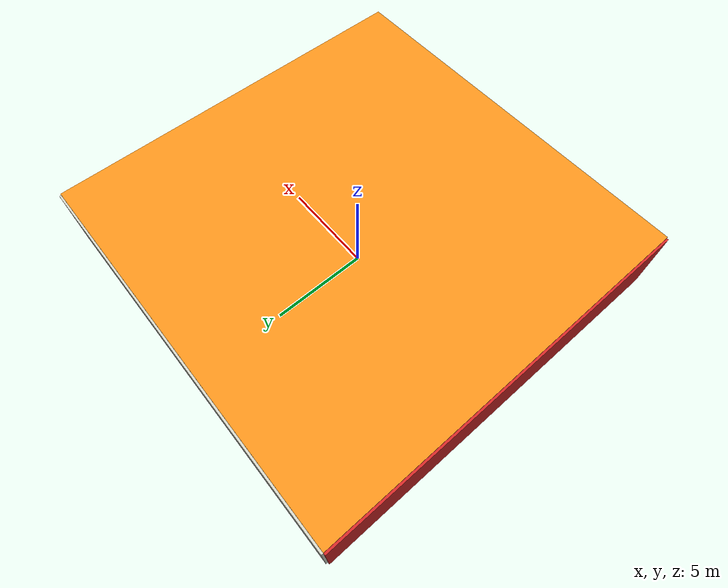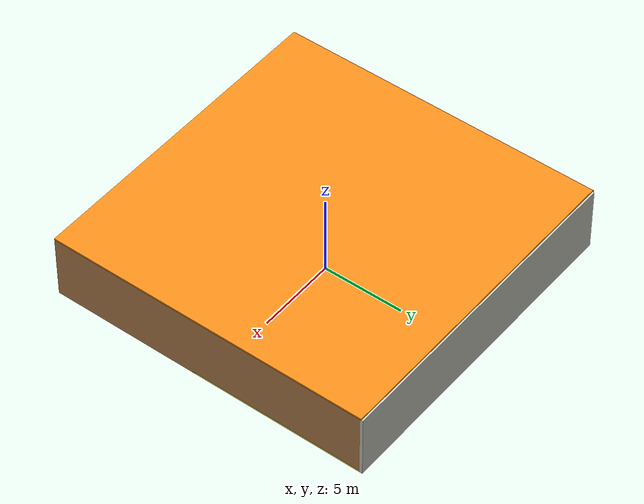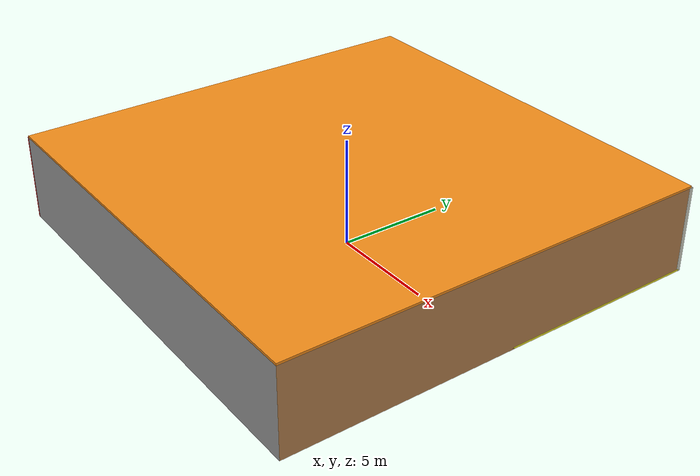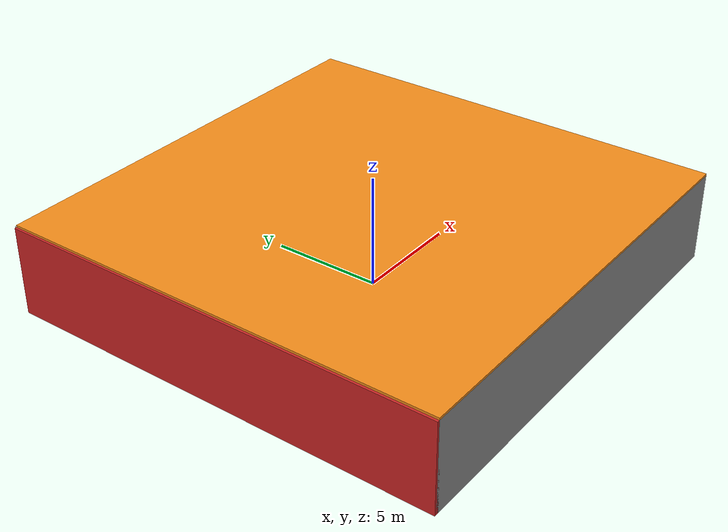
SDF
<sdf version="1.4">
 <world name="default">
  <physics type="ode">
   <max_step_size>0.001</max_step_size>
   <real_time_factor>1</real_time_factor>
   <real_time_update_rate>1000</real_time_update_rate>
   <gravity>0 0 -9.8</gravity>
  </physics>
  <scene><ambient>0.4 0.4 0.4 1</ambient><background>0.7 0.7 0.7 1</background><shadows>1</shadows></scene>
  <model name="Surrounding">
   <static>1</static>
   <link name="Ceiling">
    <collision name="Ceiling_Collision"><geometry><box><size>20 20 0.1</size></box></geometry></collision>
    <visual name="Ceiling_Visual">
     <geometry><box><size>20 20 0.1</size></box></geometry>
     <material>
      <script><uri>file://media/materials/scripts/gazebo.material</uri><name>Gazebo/Orange</name></script>
     </material>
    </visual>
    <pose>0 0 4.05 0 0 0</pose>
   </link>
   <link name="Wall_South">
    <collision name="Wall_South_Collision">
     <geometry><box><size>20 0 4</size></box></geometry>
     <pose>0 0 2 0 -0 0</pose>
    </collision>
    <visual name="Wall_South_Visual">
     <pose>0 0 2 0 -0 0</pose>
     <geometry><box><size>20 0 4</size></box></geometry>
     <material>
      <script><uri>file://media/materials/scripts/gazebo.material</uri><name>Gazebo/GreyGradientSky</name></script>
     </material>
    </visual>
    <velocity_decay><linear>0</linear><angular>0</angular></velocity_decay>
    <pose>0 -10 0 0 -0 0</pose>
   </link>
   <link name="Wall_East">
    <collision name="Wall_21_Collision">
     <geometry><box><size>20 0 4</size></box></geometry>
     <pose>0 0 2 0 -0 0</pose>
    </collision>
    <visual name="Wall_21_Visual">
     <pose>0 0 2 0 -0 0</pose>
     <geometry><box><size>20 0 4</size></box></geometry>
     <material>
      <script><uri>file://media/materials/scripts/gazebo.material</uri><name>Gazebo/Wood</name></script>
     </material>
    </visual>
    <velocity_decay><linear>0</linear><angular>0</angular></velocity_decay>
    <pose>10 0 0 0 -0 1.5708</pose>
   </link>
   <link name="Wall_North">
    <collision name="Wall_22_Collision">
     <geometry><box><size>20 0.2 4</size></box></geometry>
     <pose>0 0 2 0 -0 0</pose>
    </collision>
    <visual name="Wall_22_Visual">
     <pose>0 0 2 0 -0 0</pose>
     <geometry><box><size>20 0.2 4</size></box></geometry>
     <material>
      <script><uri>file://media/materials/scripts/gazebo.material</uri><name>Gazebo/PaintedWall</name></script>
     </material>
    </visual>
    <velocity_decay><linear>0</linear><angular>0</angular></velocity_decay>
    <pose>0 10 0 0 -0 0</pose>
   </link>
   <link name="Wall_West">
    <collision name="Wall_23_Collision">
     <geometry><box><size>20 0.2 4</size></box></geometry>
     <pose>0 0 2 0 -0 0</pose>
    </collision>
    <visual name="Wall_23_Visual">
     <pose>0 0 2 0 -0 0</pose>
     <geometry><box><size>20 0.2 4</size></box></geometry>
     <material>
      <script><uri>file://media/materials/scripts/gazebo.material</uri><name>Gazebo/RedBright</name></script>
     </material>
    </visual>
    <velocity_decay><linear>0</linear><angular>0</angular></velocity_decay>
    <pose>-10 0 0 0 0 -1.5708</pose>
   </link>
   <link name="Ground_link">
    <collision name="collision">
     <pose>0 0 .05 0 -0 0</pose>
     <geometry><box><size>20 20 0.1</size></box></geometry>
    </collision>
    <visual name="visual">
     <pose>0 0 .05 0 -0 0</pose>
     <geometry><box><size>20 20 0.1</size></box></geometry>
     <material>
      <script><uri>file://media/materials/scripts/gazebo.material</uri><name>Gazebo/YellowGlow</name></script>
     </material>
    </visual>
   </link>
   <static>1</static>
  </model>
  <spherical_coordinates>
   <surface_model>EARTH_WGS84</surface_model>
   <latitude_deg>0</latitude_deg>
   <longitude_deg>0</longitude_deg>
   <elevation>0</elevation>
   <heading_deg>0</heading_deg>
  </spherical_coordinates>
  <light name="lightball_0" type="diffuse">
   <diffuse>0.8 0.8 0.8 1</diffuse>
   <specular>0.2 0.2 0.2 1</specular>
   <attenuation>
    <range>100</range>
    <constant>0.7</constant>
    <linear>0.01</linear>
    <quadratic>0.001</quadratic>
   </attenuation>
   <direction>-0.5 0.1 -0.9</direction>
   <pose>-5.24900249116 -9.30436872461 2.44042946009 0 0 0</pose>
  </light>
  <light name="lightball_1" type="diffuse">
   <diffuse>0.8 0.8 0.8 1</diffuse>
   <specular>0.2 0.2 0.2 1</specular>
   <attenuation>
    <range>100</range>
    <constant>0.7</constant>
    <linear>0.01</linear>
    <quadratic>0.001</quadratic>
   </attenuation>
   <direction>-0.5 0.1 -0.9</direction>
   <pose>5.2860037039 5.31197141178 1.98470974956 0 0 0</pose>
  </light>
  <light name="lightball_2" type="diffuse">
   <diffuse>0.8 0.8 0.8 1</diffuse>
   <specular>0.2 0.2 0.2 1</specular>
   <attenuation>
    <range>100</range>
    <constant>0.7</constant>
    <linear>0.01</linear>
    <quadratic>0.001</quadratic>
   </attenuation>
   <direction>-0.5 0.1 -0.9</direction>
   <pose>5.54666217268 -0.480942935769 2.73995128243 0 0 0</pose>
  </light>
  <light name="lightball_3" type="diffuse">
   <diffuse>0.8 0.8 0.8 1</diffuse>
   <specular>0.2 0.2 0.2 1</specular>
   <attenuation>
    <range>100</range>
    <constant>0.7</constant>
    <linear>0.01</linear>
    <quadratic>0.001</quadratic>
   </attenuation>
   <direction>-0.5 0.1 -0.9</direction>
   <pose>-5.86711210484 4.24251803997 2.40311293666 0 0 0</pose>
  </light>
  <light name="lightball_4" type="diffuse">
   <diffuse>0.8 0.8 0.8 1</diffuse>
   <specular>0.2 0.2 0.2 1</specular>
   <attenuation>
    <range>100</range>
    <constant>0.7</constant>
    <linear>0.01</linear>
    <quadratic>0.001</quadratic>
   </attenuation>
   <direction>-0.5 0.1 -0.9</direction>
   <pose>-5.95162627022 5.75749834237 1.96406553694 0 0 0</pose>
  </light>
  <light name="lightball_5" type="diffuse">
   <diffuse>0.8 0.8 0.8 1</diffuse>
   <specular>0.2 0.2 0.2 1</specular>
   <attenuation>
    <range>100</range>
    <constant>0.7</constant>
    <linear>0.01</linear>
    <quadratic>0.001</quadratic>
   </attenuation>
   <direction>-0.5 0.1 -0.9</direction>
   <pose>0.705053763559 -9.30235126014 1.01488548659 0 0 0</pose>
  </light>
  <light name="lightball_6" type="diffuse">
   <diffuse>0.8 0.8 0.8 1</diffuse>
   <specular>0.2 0.2 0.2 1</specular>
   <attenuation>
    <range>100</range>
    <constant>0.7</constant>
    <linear>0.01</linear>
    <quadratic>0.001</quadratic>
   </attenuation>
   <direction>-0.5 0.1 -0.9</direction>
   <pose>7.85211046132 -0.0272291227253 1.26016102722 0 0 0</pose>
  </light>
  <light name="lightball_7" type="diffuse">
   <diffuse>0.8 0.8 0.8 1</diffuse>
   <specular>0.2 0.2 0.2 1</specular>
   <attenuation>
    <range>100</range>
    <constant>0.7</constant>
    <linear>0.01</linear>
    <quadratic>0.001</quadratic>
   </attenuation>
   <direction>-0.5 0.1 -0.9</direction>
   <pose>5.31922442972 -3.4477417113 3.61892712843 0 0 0</pose>
  </light>
  <light name="lightball_8" type="diffuse">
   <diffuse>0.8 0.8 0.8 1</diffuse>
   <specular>0.2 0.2 0.2 1</specular>
   <attenuation>
    <range>100</range>
    <constant>0.7</constant>
    <linear>0.01</linear>
    <quadratic>0.001</quadratic>
   </attenuation>
   <direction>-0.5 0.1 -0.9</direction>
   <pose>-1.89885600573 -0.93381180796 2.83757889734 0 0 0</pose>
  </light>
  <light name="lightball_9" type="diffuse">
   <diffuse>0.8 0.8 0.8 1</diffuse>
   <specular>0.2 0.2 0.2 1</specular>
   <attenuation>
    <range>100</range>
    <constant>0.7</constant>
    <linear>0.01</linear>
    <quadratic>0.001</quadratic>
   </attenuation>
   <direction>-0.5 0.1 -0.9</direction>
   <pose>9.48002739383 3.47184062983 2.83332910509 0 0 0</pose>
  </light>
  <light name="lightball_10" type="diffuse">
   <diffuse>0.8 0.8 0.8 1</diffuse>
   <specular>0.2 0.2 0.2 1</specular>
   <attenuation>
    <range>100</range>
    <constant>0.7</constant>
    <linear>0.01</linear>
    <quadratic>0.001</quadratic>
   </attenuation>
   <direction>-0.5 0.1 -0.9</direction>
   <pose>0.34785837132 -0.965261092863 3.87444258666 0 0 0</pose>
  </light>
  <light name="lightball_11" type="diffuse">
   <diffuse>0.8 0.8 0.8 1</diffuse>
   <specular>0.2 0.2 0.2 1</specular>
   <attenuation>
    <range>100</range>
    <constant>0.7</constant>
    <linear>0.01</linear>
    <quadratic>0.001</quadratic>
   </attenuation>
   <direction>-0.5 0.1 -0.9</direction>
   <pose>-7.2665277883 -1.77718963353 3.8146511904 0 0 0</pose>
  </light>
  <light name="lightball_12" type="diffuse">
   <diffuse>0.8 0.8 0.8 1</diffuse>
   <specular>0.2 0.2 0.2 1</specular>
   <attenuation>
    <range>100</range>
    <constant>0.7</constant>
    <linear>0.01</linear>
    <quadratic>0.001</quadratic>
   </attenuation>
   <direction>-0.5 0.1 -0.9</direction>
   <pose>-4.34687566456 8.16969093525 1.24600851356 0 0 0</pose>
  </light>
  <light name="lightball_13" type="diffuse">
   <diffuse>0.8 0.8 0.8 1</diffuse>
   <specular>0.2 0.2 0.2 1</specular>
   <attenuation>
    <range>100</range>
    <constant>0.7</constant>
    <linear>0.01</linear>
    <quadratic>0.001</quadratic>
   </attenuation>
   <direction>-0.5 0.1 -0.9</direction>
   <pose>3.10372571746 9.41031417677 1.21682605981 0 0 0</pose>
  </light>
  <include>
   <uri>model://robocup_3Dsim_goal</uri>
   <pose>-1.57132191455 -7.86526923595 0 0 0 0.308498312343</pose>
  </include>
  <include>
   <uri>model://robocup_3Dsim_goal</uri>
   <pose>5.20586197391 -3.91773122626 0 0 0 2.98127666427</pose>
  </include>
  <include><uri>model://table</uri><pose>4.00967219531 4.29762500032 0 0 0 0.988279924382</pose></include>
  <include><uri>model://table</uri><pose>7.38129533159 -7.27512170889 0 0 0 0.374959480771</pose></include>
  <include><uri>model://table</uri><pose>6.91457312889 -1.23461410834 0 0 0 2.975515972</pose></include>
  <include>
   <uri>model://textured_shapes</uri>
   <pose>7.12819178812 1.64941246779 0 0 0 2.49500493274</pose>
  </include>
 </world>
</sdf>

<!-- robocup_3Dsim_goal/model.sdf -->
<sdf version="1.5">
  <model name="robocup_3d_goal">
    <static>true</static>
    <link name="left_post">
      <pose>0 1.05 0.45 0 0 0</pose>
      <collision name="collision">
        <geometry>
          <cylinder>
            <radius>0.05</radius>
            <length>0.9</length>
          </cylinder>
        </geometry>
      </collision>
      <visual name="visual">
        <geometry>
          <cylinder>
            <radius>0.05</radius>
            <length>0.9</length>
          </cylinder>
        </geometry>
        <material>
          <script>
            <uri>file://media/materials/scripts/gazebo.material</uri>
            <name>Gazebo/ZincYellow</name>
          </script>
        </material>
      </visual>
    </link>
    <link name="left_support_horiz_lower">
      <pose>0.30 1.05 0.01 0 0 0</pose>
      <collision name="collision">
        <geometry>
          <box>
            <size>0.50 0.02 0.02</size>
          </box>
        </geometry>
      </collision>
      <visual name="visual">
        <geometry>
          <box>
            <size>0.50 0.02 0.02</size>
          </box>
        </geometry>
        <material>
          <script>
            <uri>file://media/materials/scripts/gazebo.material</uri>
            <name>Gazebo/White</name>
          </script>
        </material>
      </visual>
    </link>
    <link name="left_support_horiz_upper">
      <pose>0.30 1.05 0.79 0 0 0</pose>
      <collision name="collision">
        <geometry>
          <box>
            <size>0.50 0.02 0.02</size>
          </box>
        </geometry>
      </collision>
      <visual name="visual">
        <geometry>
          <box>
            <size>0.50 0.02 0.02</size>
          </box>
        </geometry>
        <material>
          <script>
            <uri>file://media/materials/scripts/gazebo.material</uri>
            <name>Gazebo/White</name>
          </script>
        </material>
      </visual>
    </link>
    <link name="left_support_vertical">
      <pose>0.56 1.05 0.4 0 1.5708 0</pose>
      <collision name="collision">
        <geometry>
          <box>
            <size>0.80 0.02 0.02</size>
          </box>
        </geometry>
      </collision>
      <visual name="visual">
        <geometry>
          <box>
            <size>0.80 0.02 0.02</size>
          </box>
        </geometry>
        <material>
          <script>
            <uri>file://media/materials/scripts/gazebo.material</uri>
            <name>Gazebo/White</name>
          </script>
        </material>
      </visual>
    </link>
    <link name="right_support_horiz_lower">
      <pose>0.30 -1.05 0.01 0 0 0</pose>
      <collision name="collision">
        <geometry>
          <box>
            <size>0.50 0.02 0.02</size>
          </box>
        </geometry>
      </collision>
      <visual name="visual">
        <geometry>
          <box>
            <size>0.50 0.02 0.02</size>
          </box>
        </geometry>
        <material>
          <script>
            <uri>file://media/materials/scripts/gazebo.material</uri>
            <name>Gazebo/White</name>
          </script>
        </material>
      </visual>
    </link>
    <link name="right_support_horiz_upper">
      <pose>0.30 -1.05 0.79 0 0 0</pose>
      <collision name="collision">
        <geometry>
          <box>
            <size>0.50 0.02 0.02</size>
          </box>
        </geometry>
      </collision>
      <visual name="visual">
        <geometry>
          <box>
            <size>0.50 0.02 0.02</size>
          </box>
        </geometry>
        <material>
          <script>
            <uri>file://media/materials/scripts/gazebo.material</uri>
            <name>Gazebo/White</name>
          </script>
        </material>
      </visual>
    </link>
    <link name="right_support_vertical">
      <pose>0.56 -1.05 0.4 0 1.5708 0</pose>
      <collision name="collision">
        <geometry>
          <box>
            <size>0.80 0.02 0.02</size>
          </box>
        </geometry>
      </collision>
      <visual name="visual">
        <geometry>
          <box>
            <size>0.80 0.02 0.02</size>
          </box>
        </geometry>
        <material>
          <script>
            <uri>file://media/materials/scripts/gazebo.material</uri>
            <name>Gazebo/White</name>
          </script>
        </material>
      </visual>
    </link>
    <link name="center_support_horiz_lower">
      <pose>0.56 0 0.01 0 1.5708 0</pose>
      <collision name="collision">
        <geometry>
          <box>
            <size>0.02 2.08 0.02</size>
          </box>
        </geometry>
      </collision>
      <visual name="visual">
        <geometry>
          <box>
            <size>0.02 2.08 0.02</size>
          </box>
        </geometry>
        <material>
          <script>
            <uri>file://media/materials/scripts/gazebo.material</uri>
            <name>Gazebo/White</name>
          </script>
        </material>
      </visual>
    </link>
    <link name="center_support_horiz_upper">
      <pose>0.56 0 0.79 0 1.5708 0</pose>
      <collision name="collision">
        <geometry>
          <box>
            <size>0.02 2.08 0.02</size>
          </box>
        </geometry>
      </collision>
      <visual name="visual">
        <geometry>
          <box>
            <size>0.02 2.08 0.02</size>
          </box>
        </geometry>
        <material>
          <script>
            <uri>file://media/materials/scripts/gazebo.material</uri>
            <name>Gazebo/White</name>
          </script>
        </material>
      </visual>
    </link>
    <link name="right_post">
      <pose>0 -1.05 0.45 0 0 0</pose>
      <collision name="collision">
        <geometry>
          <cylinder>
            <radius>0.05</radius>
            <length>0.9</length>
          </cylinder>
        </geometry>
      </collision>
      <visual name="visual">
        <geometry>
          <cylinder>
            <radius>0.05</radius>
            <length>0.9</length>
          </cylinder>
        </geometry>
        <material>
          <script>
            <uri>file://media/materials/scripts/gazebo.material</uri>
            <name>Gazebo/ZincYellow</name>
          </script>
        </material>
      </visual>
    </link>
    <link name="crossbar">
      <pose>0 0 0.85 1.57 1.57 0</pose>
      <collision name="collision">
        <geometry>
          <cylinder>
            <radius>0.05</radius>
            <length>2.0</length>
          </cylinder>
        </geometry>
      </collision>
      <visual name="visual">
        <geometry>
          <cylinder>
            <radius>0.05</radius>
            <length>2.0</length>
          </cylinder>
        </geometry>
        <material>
          <script>
            <uri>file://media/materials/scripts/gazebo.material</uri>
            <name>Gazebo/ZincYellow</name>
          </script>
        </material>
      </visual>
    </link>
    <link name="center_net">
      <pose>0.56 0 0.40 0 0 0</pose>
      <collision name="collision">
        <geometry>
          <box>
            <size>0.01 2.1 0.80</size>
          </box>
        </geometry>
      </collision>
      <visual name="visual">
        <geometry>
          <box>
            <size>0.01 2.1 0.80</size>
          </box>
        </geometry>
        <material>
          <script>
            <uri>model://../model_source/models/robocup09_spl_field/materials/scripts/</uri>
            <uri>model://../model_source/models/robocup09_spl_field/materials/textures/</uri>
            <name>RoboCup/Net</name>
          </script>
        </material>
      </visual>
    </link>
    <link name="left_net">
      <pose>0.30 1.05 0.40 0 0 0</pose>
      <collision name="collision">
        <geometry>
          <box>
            <size>0.50 0.01 0.76</size>
          </box>
        </geometry>
      </collision>
      <visual name="visual">
        <geometry>
          <box>
            <size>0.50 0.01 0.76</size>
          </box>
        </geometry>
        <material>
          <script>
            <uri>model://../model_source/models/robocup09_spl_field/materials/scripts/</uri>
            <uri>model://../model_source/models/robocup09_spl_field/materials/textures/</uri>
            <name>RoboCup/Net</name>
          </script>
        </material>
      </visual>
    </link>
    <link name="right_net">
      <pose>0.30 -1.05 0.40 0 0 0</pose>
      <collision name="collision">
        <geometry>
          <box>
            <size>0.50 0.01 0.76</size>
          </box>
        </geometry>
      </collision>
      <visual name="visual">
        <geometry>
          <box>
            <size>0.50 0.01 0.76</size>
          </box>
        </geometry>
        <material>
          <script>
            <uri>model://../model_source/models/robocup09_spl_field/materials/scripts/</uri>
            <uri>model://../model_source/models/robocup09_spl_field/materials/textures/</uri>
            <name>RoboCup/Net</name>
          </script>
        </material>
      </visual>
    </link>
  </model>
</sdf>

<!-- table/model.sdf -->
<sdf version="1.5">
  <model name="table">
    <static>true</static>
    <link name="link">
      <collision name="surface">
        <pose>0 0 1.0 0 0 0</pose>
        <geometry>
          <box>
            <size>1.5 0.8 0.03</size>
          </box>
        </geometry>
        <surface>
          <friction>
            <ode>
              <mu>0.6</mu>
              <mu2>0.6</mu2>
            </ode>
          </friction>
        </surface>
      </collision>
      <visual name="visual1">
        <pose>0 0 1.0 0 0 0</pose>
        <geometry>
          <box>
            <size>1.5 0.8 0.03</size>
          </box>
        </geometry>
        <material>
          <script>
            <uri>model://media/materials/scripts/gazebo.material</uri>
            <name>Gazebo/Wood</name>
          </script>
        </material>
      </visual>
      <collision name="front_left_leg">
        <pose>0.68 0.38 0.5 0 0 0</pose>
        <geometry>
          <cylinder>
            <radius>0.02</radius>
            <length>1.0</length>
          </cylinder>
        </geometry>
      </collision>
      <visual name="front_left_leg">
        <pose>0.68 0.38 0.5 0 0 0</pose>
        <geometry>
          <cylinder>
            <radius>0.02</radius>
            <length>1.0</length>
          </cylinder>
        </geometry>
        <material>
          <script>
            <uri>model://media/materials/scripts/gazebo.material</uri>
            <name>Gazebo/Grey</name>
          </script>
        </material>
      </visual>
      <collision name="front_right_leg">
        <pose>0.68 -0.38 0.5 0 0 0</pose>
        <geometry>
          <cylinder>
            <radius>0.02</radius>
            <length>1.0</length>
          </cylinder>
        </geometry>
      </collision>
      <visual name="front_right_leg">
        <pose>0.68 -0.38 0.5 0 0 0</pose>
        <geometry>
          <cylinder>
            <radius>0.02</radius>
            <length>1.0</length>
          </cylinder>
        </geometry>
        <material>
          <script>
            <uri>model://media/materials/scripts/gazebo.material</uri>
            <name>Gazebo/Grey</name>
          </script>
        </material>
      </visual>
      <collision name="back_right_leg">
        <pose>-0.68 -0.38 0.5 0 0 0</pose>
        <geometry>
          <cylinder>
            <radius>0.02</radius>
            <length>1.0</length>
          </cylinder>
        </geometry>
      </collision>
      <visual name="back_right_leg">
        <pose>-0.68 -0.38 0.5 0 0 0</pose>
        <geometry>
          <cylinder>
            <radius>0.02</radius>
            <length>1.0</length>
          </cylinder>
        </geometry>
        <material>
          <script>
            <uri>model://media/materials/scripts/gazebo.material</uri>
            <name>Gazebo/Grey</name>
          </script>
        </material>
      </visual>
      <collision name="back_left_leg">
        <pose>-0.68 0.38 0.5 0 0 0</pose>
        <geometry>
          <cylinder>
            <radius>0.02</radius>
            <length>1.0</length>
          </cylinder>
        </geometry>
      </collision>
      <visual name="back_left_leg">
        <pose>-0.68 0.38 0.5 0 0 0</pose>
        <geometry>
          <cylinder>
            <radius>0.02</radius>
            <length>1.0</length>
          </cylinder>
        </geometry>
        <material>
          <script>
            <uri>model://media/materials/scripts/gazebo.material</uri>
            <name>Gazebo/Grey</name>
          </script>
        </material>
      </visual>
    </link>
  </model>
</sdf>

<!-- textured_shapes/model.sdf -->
<sdf version="1.6">
  <model name="textured_shapes">
    <pose>0 0 0.5 0 0 0</pose>
    <link name="box">
      <pose>0 -1.5 0 0 0 0</pose>
      <collision name="collision">
        <geometry>
          <box>
            <size>1 1 1</size>
          </box>
        </geometry>
      </collision>
      <visual name="visual">
        <geometry>
          <box>
            <size>1 1 1</size>
          </box>
        </geometry>
        <material>
          <script>
            <uri>model://../model_source/models/textured_shapes/materials/scripts</uri>
            <uri>model://../model_source/models/textured_shapes/materials/textures</uri>
            <name>TexturedShape/Squares</name>
          </script>
        </material>
      </visual>
    </link>
    <link name="sphere">
      <collision name="collision">
        <geometry>
          <sphere>
            <radius>0.5</radius>
          </sphere>
        </geometry>
      </collision>
      <visual name="visual">
        <geometry>
          <sphere>
            <radius>0.5</radius>
          </sphere>
        </geometry>
        <material>
          <script>
            <uri>model://../model_source/models/textured_shapes/materials/scripts</uri>
            <uri>model://../model_source/models/textured_shapes/materials/textures</uri>
            <name>TexturedShape/Squares</name>
          </script>
        </material>
      </visual>
    </link>
    <link name="cylinder">
      <pose>0 1.5 0 0 0 0</pose>
      <collision name="collision">
        <geometry>
          <cylinder>
            <radius>0.5</radius>
            <length>1</length>
          </cylinder>
        </geometry>
      </collision>
      <visual name="visual">
        <geometry>
          <cylinder>
            <radius>0.5</radius>
            <length>1</length>
          </cylinder>
        </geometry>
        <material>
          <script>
            <uri>model://../model_source/models/textured_shapes/materials/scripts</uri>
            <uri>model://../model_source/models/textured_shapes/materials/textures</uri>
            <name>TexturedShape/Squares</name>
          </script>
        </material>
      </visual>
    </link>
  </model>
</sdf>
